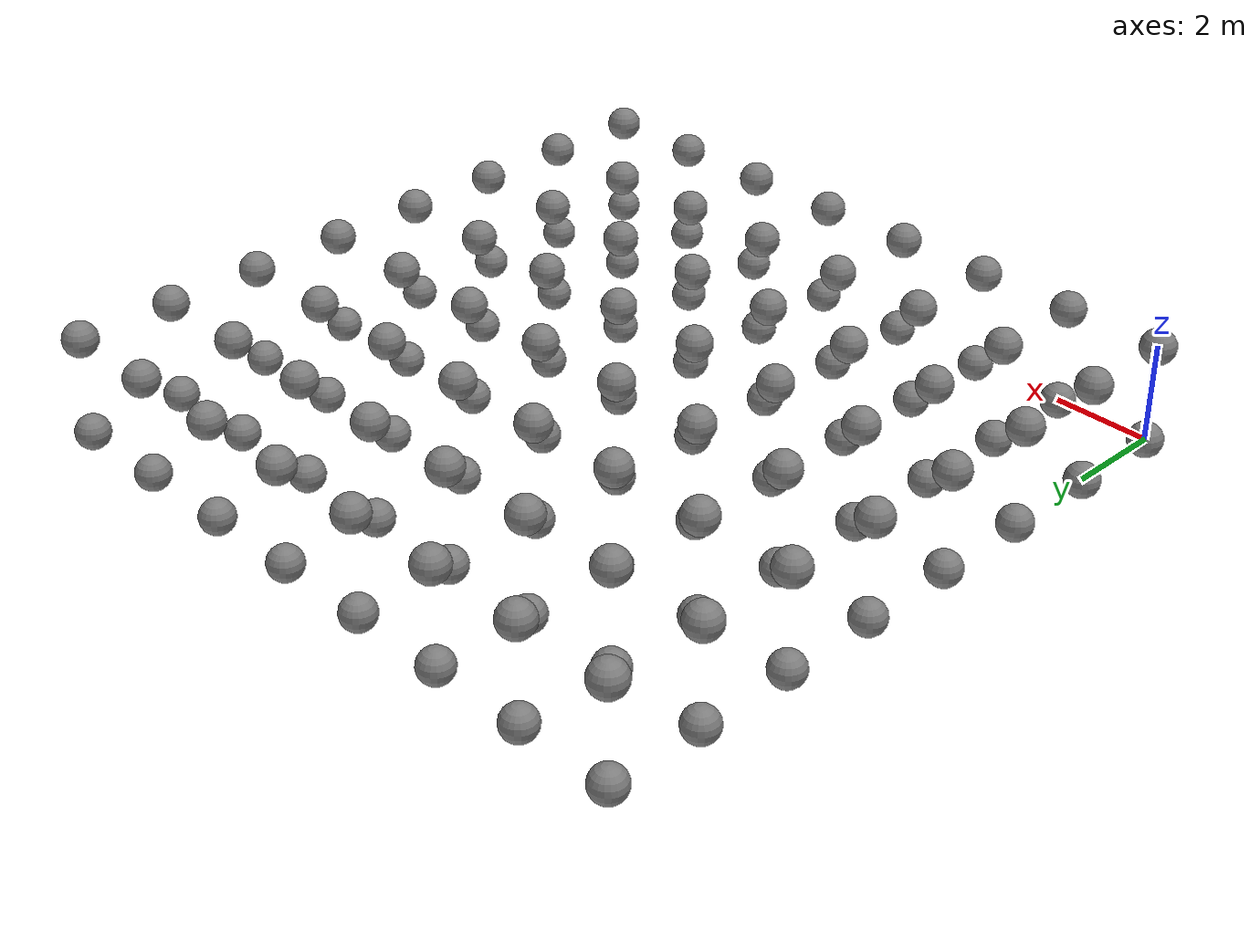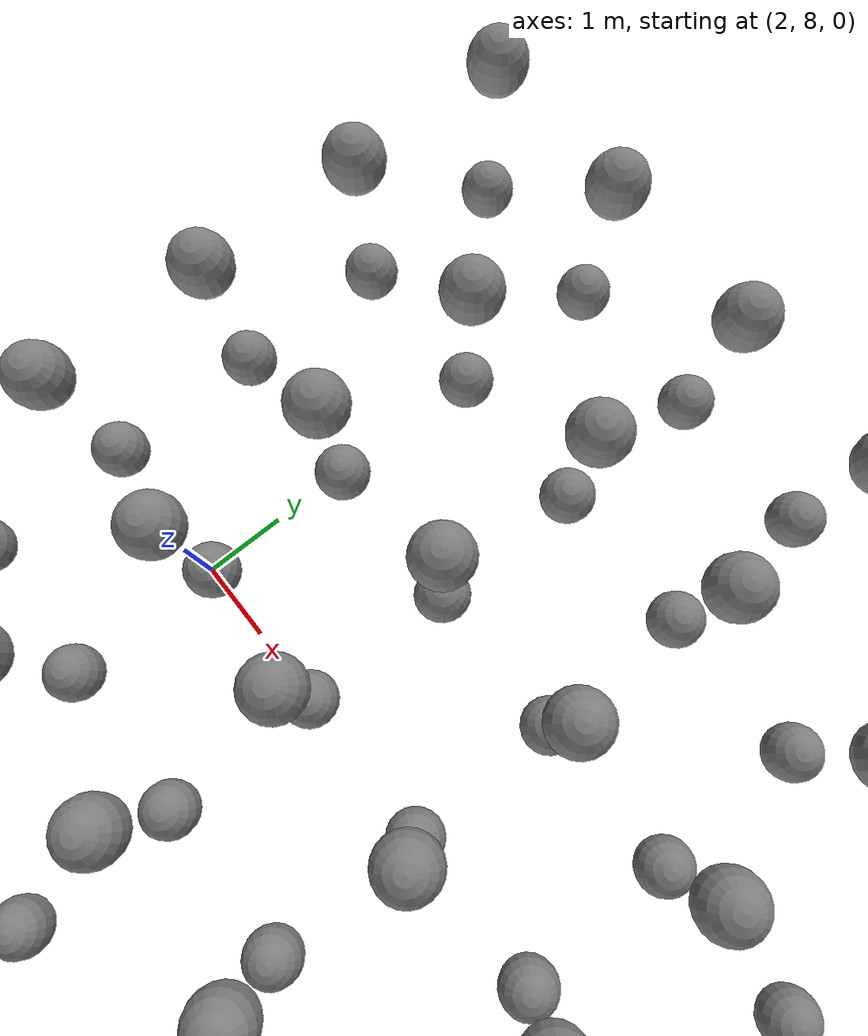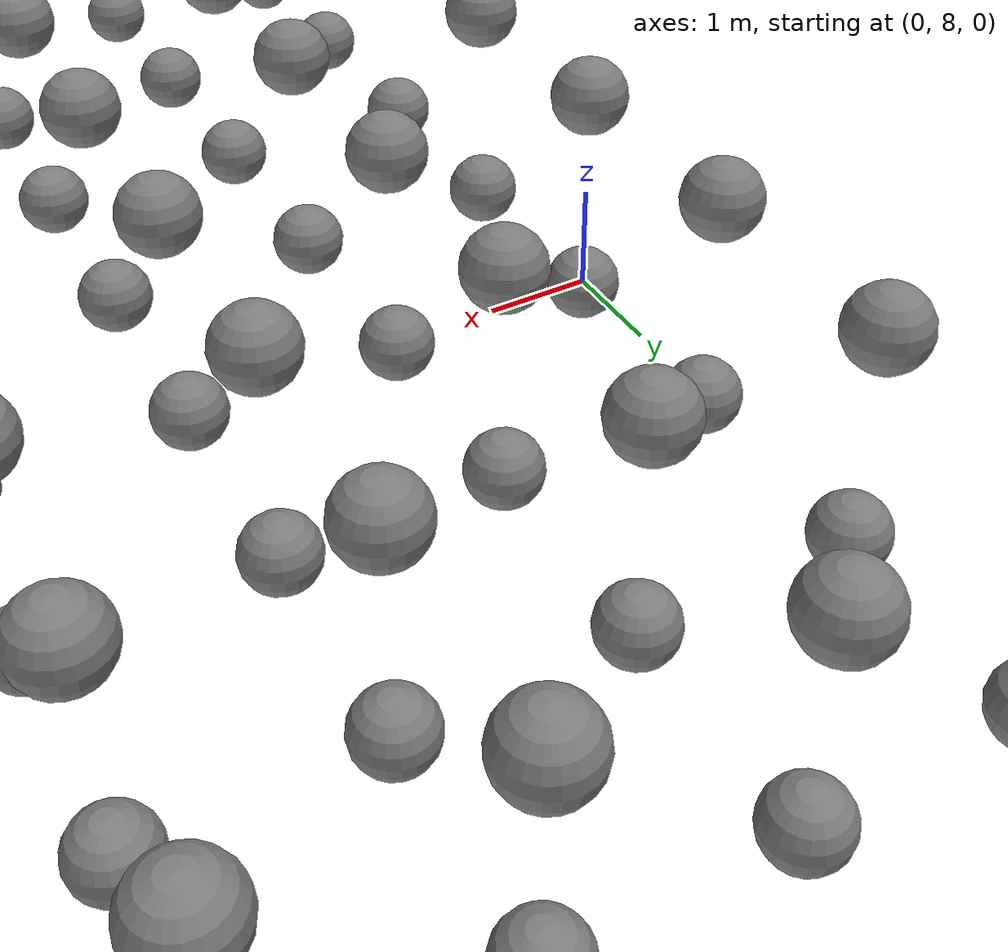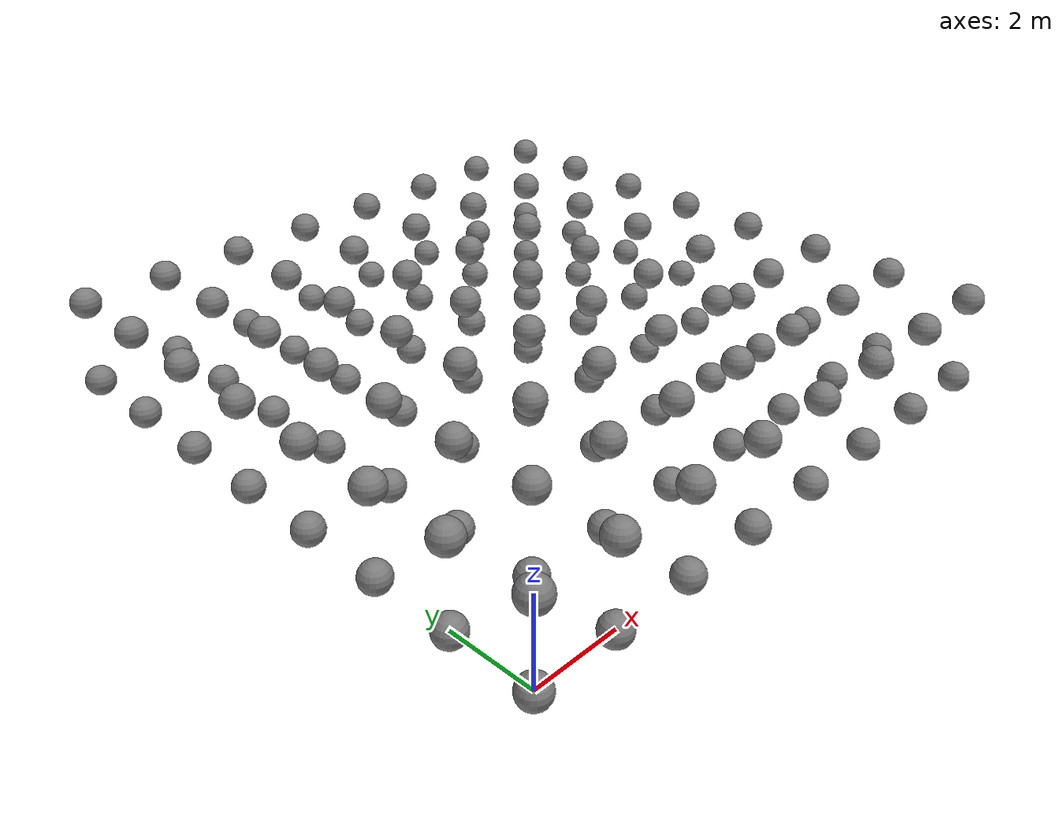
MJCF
<mujoco><option ccd_iterations="100"/><worldbody><body pos="0 0 0"><freejoint/><geom type="sphere" size=".35 .4 .45"/></body><body pos="2 0 0"><freejoint/><geom type="sphere" size=".35 .4 .45"/></body><body pos="4 0 0"><freejoint/><geom type="sphere" size=".35 .4 .45"/></body><body pos="6 0 0"><freejoint/><geom type="sphere" size=".35 .4 .45"/></body><body pos="8 0 0"><freejoint/><geom type="sphere" size=".35 .4 .45"/></body><body pos="10 0 0"><freejoint/><geom type="sphere" size=".35 .4 .45"/></body><body pos="12 0 0"><freejoint/><geom type="sphere" size=".35 .4 .45"/></body><body pos="14 0 0"><freejoint/><geom type="sphere" size=".35 .4 .45"/></body><body pos="0 2 0"><freejoint/><geom type="sphere" size=".35 .4 .45"/></body><body pos="2 2 0"><freejoint/><geom type="sphere" size=".35 .4 .45"/></body><body pos="4 2 0"><freejoint/><geom type="sphere" size=".35 .4 .45"/></body><body pos="6 2 0"><freejoint/><geom type="sphere" size=".35 .4 .45"/></body><body pos="8 2 0"><freejoint/><geom type="sphere" size=".35 .4 .45"/></body><body pos="10 2 0"><freejoint/><geom type="sphere" size=".35 .4 .45"/></body><body pos="12 2 0"><freejoint/><geom type="sphere" size=".35 .4 .45"/></body><body pos="14 2 0"><freejoint/><geom type="sphere" size=".35 .4 .45"/></body><body pos="0 4 0"><freejoint/><geom type="sphere" size=".35 .4 .45"/></body><body pos="2 4 0"><freejoint/><geom type="sphere" size=".35 .4 .45"/></body><body pos="4 4 0"><freejoint/><geom type="sphere" size=".35 .4 .45"/></body><body pos="6 4 0"><freejoint/><geom type="sphere" size=".35 .4 .45"/></body><body pos="8 4 0"><freejoint/><geom type="sphere" size=".35 .4 .45"/></body><body pos="10 4 0"><freejoint/><geom type="sphere" size=".35 .4 .45"/></body><body pos="12 4 0"><freejoint/><geom type="sphere" size=".35 .4 .45"/></body><body pos="14 4 0"><freejoint/><geom type="sphere" size=".35 .4 .45"/></body><body pos="0 6 0"><freejoint/><geom type="sphere" size=".35 .4 .45"/></body><body pos="2 6 0"><freejoint/><geom type="sphere" size=".35 .4 .45"/></body><body pos="4 6 0"><freejoint/><geom type="sphere" size=".35 .4 .45"/></body><body pos="6 6 0"><freejoint/><geom type="sphere" size=".35 .4 .45"/></body><body pos="8 6 0"><freejoint/><geom type="sphere" size=".35 .4 .45"/></body><body pos="10 6 0"><freejoint/><geom type="sphere" size=".35 .4 .45"/></body><body pos="12 6 0"><freejoint/><geom type="sphere" size=".35 .4 .45"/></body><body pos="14 6 0"><freejoint/><geom type="sphere" size=".35 .4 .45"/></body><body pos="0 8 0"><freejoint/><geom type="sphere" size=".35 .4 .45"/></body><body pos="2 8 0"><freejoint/><geom type="sphere" size=".35 .4 .45"/></body><body pos="4 8 0"><freejoint/><geom type="sphere" size=".35 .4 .45"/></body><body pos="6 8 0"><freejoint/><geom type="sphere" size=".35 .4 .45"/></body><body pos="8 8 0"><freejoint/><geom type="sphere" size=".35 .4 .45"/></body><body pos="10 8 0"><freejoint/><geom type="sphere" size=".35 .4 .45"/></body><body pos="12 8 0"><freejoint/><geom type="sphere" size=".35 .4 .45"/></body><body pos="14 8 0"><freejoint/><geom type="sphere" size=".35 .4 .45"/></body><body pos="0 10 0"><freejoint/><geom type="sphere" size=".35 .4 .45"/></body><body pos="2 10 0"><freejoint/><geom type="sphere" size=".35 .4 .45"/></body><body pos="4 10 0"><freejoint/><geom type="sphere" size=".35 .4 .45"/></body><body pos="6 10 0"><freejoint/><geom type="sphere" size=".35 .4 .45"/></body><body pos="8 10 0"><freejoint/><geom type="sphere" size=".35 .4 .45"/></body><body pos="10 10 0"><freejoint/><geom type="sphere" size=".35 .4 .45"/></body><body pos="12 10 0"><freejoint/><geom type="sphere" size=".35 .4 .45"/></body><body pos="14 10 0"><freejoint/><geom type="sphere" size=".35 .4 .45"/></body><body pos="0 12 0"><freejoint/><geom type="sphere" size=".35 .4 .45"/></body><body pos="2 12 0"><freejoint/><geom type="sphere" size=".35 .4 .45"/></body><body pos="4 12 0"><freejoint/><geom type="sphere" size=".35 .4 .45"/></body><body pos="6 12 0"><freejoint/><geom type="sphere" size=".35 .4 .45"/></body><body pos="8 12 0"><freejoint/><geom type="sphere" size=".35 .4 .45"/></body><body pos="10 12 0"><freejoint/><geom type="sphere" size=".35 .4 .45"/></body><body pos="12 12 0"><freejoint/><geom type="sphere" size=".35 .4 .45"/></body><body pos="14 12 0"><freejoint/><geom type="sphere" size=".35 .4 .45"/></body><body pos="0 14 0"><freejoint/><geom type="sphere" size=".35 .4 .45"/></body><body pos="2 14 0"><freejoint/><geom type="sphere" size=".35 .4 .45"/></body><body pos="4 14 0"><freejoint/><geom type="sphere" size=".35 .4 .45"/></body><body pos="6 14 0"><freejoint/><geom type="sphere" size=".35 .4 .45"/></body><body pos="8 14 0"><freejoint/><geom type="sphere" size=".35 .4 .45"/></body><body pos="10 14 0"><freejoint/><geom type="sphere" size=".35 .4 .45"/></body><body pos="12 14 0"><freejoint/><geom type="sphere" size=".35 .4 .45"/></body><body pos="14 14 0"><freejoint/><geom type="sphere" size=".35 .4 .45"/></body><body pos="0 0 2"><freejoint/><geom type="sphere" size=".35 .4 .45"/></body><body pos="2 0 2"><freejoint/><geom type="sphere" size=".35 .4 .45"/></body><body pos="4 0 2"><freejoint/><geom type="sphere" size=".35 .4 .45"/></body><body pos="6 0 2"><freejoint/><geom type="sphere" size=".35 .4 .45"/></body><body pos="8 0 2"><freejoint/><geom type="sphere" size=".35 .4 .45"/></body><body pos="10 0 2"><freejoint/><geom type="sphere" size=".35 .4 .45"/></body><body pos="12 0 2"><freejoint/><geom type="sphere" size=".35 .4 .45"/></body><body pos="14 0 2"><freejoint/><geom type="sphere" size=".35 .4 .45"/></body><body pos="0 2 2"><freejoint/><geom type="sphere" size=".35 .4 .45"/></body><body pos="2 2 2"><freejoint/><geom type="sphere" size=".35 .4 .45"/></body><body pos="4 2 2"><freejoint/><geom type="sphere" size=".35 .4 .45"/></body><body pos="6 2 2"><freejoint/><geom type="sphere" size=".35 .4 .45"/></body><body pos="8 2 2"><freejoint/><geom type="sphere" size=".35 .4 .45"/></body><body pos="10 2 2"><freejoint/><geom type="sphere" size=".35 .4 .45"/></body><body pos="12 2 2"><freejoint/><geom type="sphere" size=".35 .4 .45"/></body><body pos="14 2 2"><freejoint/><geom type="sphere" size=".35 .4 .45"/></body><body pos="0 4 2"><freejoint/><geom type="sphere" size=".35 .4 .45"/></body><body pos="2 4 2"><freejoint/><geom type="sphere" size=".35 .4 .45"/></body><body pos="4 4 2"><freejoint/><geom type="sphere" size=".35 .4 .45"/></body><body pos="6 4 2"><freejoint/><geom type="sphere" size=".35 .4 .45"/></body><body pos="8 4 2"><freejoint/><geom type="sphere" size=".35 .4 .45"/></body><body pos="10 4 2"><freejoint/><geom type="sphere" size=".35 .4 .45"/></body><body pos="12 4 2"><freejoint/><geom type="sphere" size=".35 .4 .45"/></body><body pos="14 4 2"><freejoint/><geom type="sphere" size=".35 .4 .45"/></body><body pos="0 6 2"><freejoint/><geom type="sphere" size=".35 .4 .45"/></body><body pos="2 6 2"><freejoint/><geom type="sphere" size=".35 .4 .45"/></body><body pos="4 6 2"><freejoint/><geom type="sphere" size=".35 .4 .45"/></body><body pos="6 6 2"><freejoint/><geom type="sphere" size=".35 .4 .45"/></body><body pos="8 6 2"><freejoint/><geom type="sphere" size=".35 .4 .45"/></body><body pos="10 6 2"><freejoint/><geom type="sphere" size=".35 .4 .45"/></body><body pos="12 6 2"><freejoint/><geom type="sphere" size=".35 .4 .45"/></body><body pos="14 6 2"><freejoint/><geom type="sphere" size=".35 .4 .45"/></body><body pos="0 8 2"><freejoint/><geom type="sphere" size=".35 .4 .45"/></body><body pos="2 8 2"><freejoint/><geom type="sphere" size=".35 .4 .45"/></body><body pos="4 8 2"><freejoint/><geom type="sphere" size=".35 .4 .45"/></body><body pos="6 8 2"><freejoint/><geom type="sphere" size=".35 .4 .45"/></body><body pos="8 8 2"><freejoint/><geom type="sphere" size=".35 .4 .45"/></body><body pos="10 8 2"><freejoint/><geom type="sphere" size=".35 .4 .45"/></body><body pos="12 8 2"><freejoint/><geom type="sphere" size=".35 .4 .45"/></body><body pos="14 8 2"><freejoint/><geom type="sphere" size=".35 .4 .45"/></body><body pos="0 10 2"><freejoint/><geom type="sphere" size=".35 .4 .45"/></body><body pos="2 10 2"><freejoint/><geom type="sphere" size=".35 .4 .45"/></body><body pos="4 10 2"><freejoint/><geom type="sphere" size=".35 .4 .45"/></body><body pos="6 10 2"><freejoint/><geom type="sphere" size=".35 .4 .45"/></body><body pos="8 10 2"><freejoint/><geom type="sphere" size=".35 .4 .45"/></body><body pos="10 10 2"><freejoint/><geom type="sphere" size=".35 .4 .45"/></body><body pos="12 10 2"><freejoint/><geom type="sphere" size=".35 .4 .45"/></body><body pos="14 10 2"><freejoint/><geom type="sphere" size=".35 .4 .45"/></body><body pos="0 12 2"><freejoint/><geom type="sphere" size=".35 .4 .45"/></body><body pos="2 12 2"><freejoint/><geom type="sphere" size=".35 .4 .45"/></body><body pos="4 12 2"><freejoint/><geom type="sphere" size=".35 .4 .45"/></body><body pos="6 12 2"><freejoint/><geom type="sphere" size=".35 .4 .45"/></body><body pos="8 12 2"><freejoint/><geom type="sphere" size=".35 .4 .45"/></body><body pos="10 12 2"><freejoint/><geom type="sphere" size=".35 .4 .45"/></body><body pos="12 12 2"><freejoint/><geom type="sphere" size=".35 .4 .45"/></body><body pos="14 12 2"><freejoint/><geom type="sphere" size=".35 .4 .45"/></body><body pos="0 14 2"><freejoint/><geom type="sphere" size=".35 .4 .45"/></body><body pos="2 14 2"><freejoint/><geom type="sphere" size=".35 .4 .45"/></body><body pos="4 14 2"><freejoint/><geom type="sphere" size=".35 .4 .45"/></body><body pos="6 14 2"><freejoint/><geom type="sphere" size=".35 .4 .45"/></body><body pos="8 14 2"><freejoint/><geom type="sphere" size=".35 .4 .45"/></body><body pos="10 14 2"><freejoint/><geom type="sphere" size=".35 .4 .45"/></body><body pos="12 14 2"><freejoint/><geom type="sphere" size=".35 .4 .45"/></body><body pos="14 14 2"><freejoint/><geom type="sphere" size=".35 .4 .45"/></body></worldbody></mujoco>
